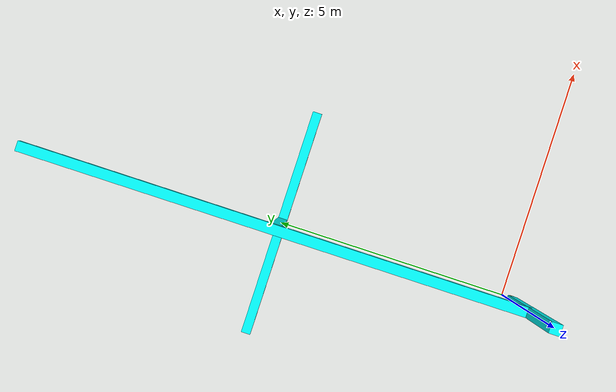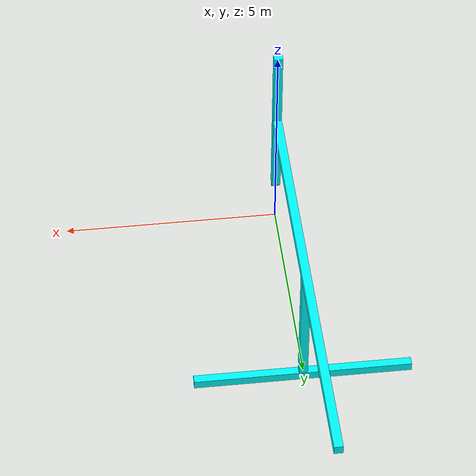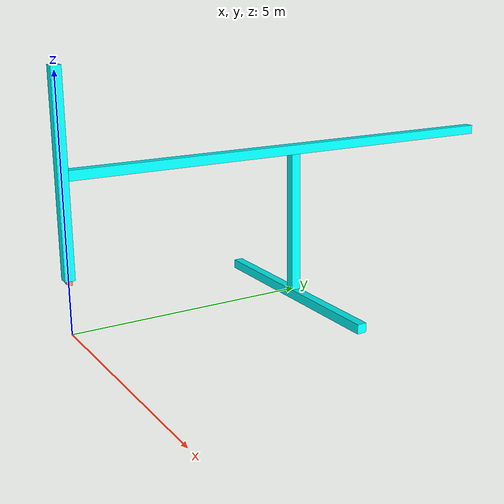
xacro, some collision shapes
<?xml version="1.0"?>
<robot name="drone" xmlns:xacro="http://www.ros.org/wiki/xacro">

  <!--Other files to be included-->
  <xacro:include filename="$(find gazebo_example)/urdf/drone.gazebo.xacro" />

  <!--Some xacros-->
  <xacro:property name="prefix" value="/drone/" />

  <!--fixed frame odom, also used in fwx-->
  <link name="world"/>

  <joint name="${prefix}world_to_link1" type="fixed">
    <parent link="world"/>
    <child link="${prefix}link1"/>
    <origin xyz="0 5 -0.1"/>
  </joint>

  <!--link1-->
  <link name="${prefix}link1">
    <inertial>
      <origin xyz="0 0 0" rpy="0 0 0"/>
      <mass value="1"/>
      <inertia ixx="1"  ixy="0"  ixz="0" iyy="1" iyz="0" izz="1" />
    </inertial>

    <visual>
      <origin xyz="0 0 0" rpy="0 0 0" />
      <geometry>
        <box size="5 0.2 0.2" />
      </geometry>
      <material name="Cyan">
        <color rgba="0 1.0 1.0 1.0"/>
      </material>
    </visual>
  </link>

  <joint name="${prefix}link1_to_link2" type="prismatic">
    <parent link="${prefix}link1"/>
    <child link="${prefix}link2"/>
    <origin xyz="0 0 1.6"/>
    <axis xyz="1 0 0"/>
    <limit effort="1000.0" lower="-2.5" upper="2.5" velocity="0.1"/>
  </joint>

  <!--link2-->
  <link name="${prefix}link2">
    <inertial>
      <origin xyz="0 0 0" rpy="0 0 0"/>
      <mass value="1"/>
      <inertia ixx="1"  ixy="0"  ixz="0" iyy="1" iyz="0" izz="1" />
    </inertial>

    <visual>
      <origin xyz="0 0 0" rpy="0 0 0" />
      <geometry>
        <box size="0.2 0.2 3" />
      </geometry>
      <material name="Cyan">
        <color rgba="0 1.0 1.0 1.0"/>
      </material>
    </visual>
  </link>

  <joint name="${prefix}link2_to_link3" type="prismatic">
    <parent link="${prefix}link2"/>
    <child link="${prefix}link3"/>
    <origin xyz="0 0 1.6"/>
    <axis xyz="0 1 0"/>
    <limit effort="1000.0" lower="-5" upper="5" velocity="0.1"/>
  </joint>

  <!--link3-->
  <link name="${prefix}link3">
    <inertial>
      <origin xyz="0 0 0" rpy="0 0 0"/>
      <mass value="1"/>
      <inertia ixx="1"  ixy="0"  ixz="0" iyy="1" iyz="0" izz="1" />
    </inertial>

    <visual>
      <origin xyz="0 0 0" rpy="0 0 0" />
      <geometry>
        <box size="0.2 10 0.2" />
      </geometry>
      <material name="Cyan">
        <color rgba="0 1.0 1.0 1.0"/>
      </material>
    </visual>
  </link>

  <joint name="${prefix}link3_to_link4" type="prismatic">
    <parent link="${prefix}link3"/>
    <child link="${prefix}link4"/>
    <origin xyz="0 -5 0"/>
    <axis xyz="0 0 1"/>
    <limit effort="1000.0" lower="-2" upper="2" velocity="0.1"/>
  </joint>

  <!--link4-->
  <link name="${prefix}link4">
    <inertial>
      <origin xyz="0 0 0" rpy="0 0 0"/>
      <mass value="1"/>
      <inertia ixx="1"  ixy="0"  ixz="0" iyy="1" iyz="0" izz="1" />
    </inertial>

    <visual>
      <origin xyz="0 0 0" rpy="0 0 0" />
      <geometry>
        <box size="0.2 0.2 4" />
      </geometry>
      <material name="Cyan">
        <color rgba="0 1.0 1.0 1.0"/>
      </material>
    </visual>
  </link>

  <joint name="${prefix}link4_to_drone" type="continuous">
    <parent link="${prefix}link4"/>
    <child link="${prefix}itself"/>
    <origin xyz="0 0 -2.04"/>
    <axis xyz="0 0 1"/>
  </joint>

  <!--drone itself-->
  <link name="${prefix}itself">
    <inertial>
      <origin xyz="0 0 0" rpy="0 0 0"/>
      <mass value="1"/>
      <inertia ixx="1"  ixy="0"  ixz="0" iyy="1" iyz="0" izz="1" />
    </inertial>

    <visual>
      <origin xyz="0 0 0" rpy="0 0 0" />
      <geometry>
        <mesh filename="package://gazebo_example/meshes/drone.STL" />
      </geometry>
    </visual>

    <collision>
      <origin xyz="0 0 0" rpy="0 0 0" />
      <geometry>
        <box size="0.2 0.08 0.08" />
      </geometry>
    </collision>>

  </link>

  <xacro:drone_gazebo prefix="${prefix}"
    hw_interface="hardware_interface/PositionJointInterface"
  />

</robot>

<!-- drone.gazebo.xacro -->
<robot xmlns:xacro="http://wiki.ros.org/xacro">

  <xacro:macro name="drone_gazebo" params="prefix hw_interface">

    <!--transmission-->
    <transmission name="${prefix}link1_to_link2_trans">
      <type>transmission_interface/SimpleTransmission</type>
      <joint name="${prefix}link1_to_link2">
        <hardwareInterface>${hw_interface}</hardwareInterface>
      </joint>
      <actuator name="${prefix}link1_to_link2_motor">
        <mechanicalReduction>1</mechanicalReduction>
      </actuator>
    </transmission>

    <transmission name="${prefix}link2_to_link3_trans">
      <type>transmission_interface/SimpleTransmission</type>
      <joint name="${prefix}link2_to_link3">
        <hardwareInterface>${hw_interface}</hardwareInterface>
      </joint>
      <actuator name="${prefix}link2_to_link3_motor">
        <mechanicalReduction>1</mechanicalReduction>
      </actuator>
    </transmission>

    <transmission name="${prefix}link3_to_link4_trans">
      <type>transmission_interface/SimpleTransmission</type>
      <joint name="${prefix}link3_to_link4">
        <hardwareInterface>${hw_interface}</hardwareInterface>
      </joint>
      <actuator name="${prefix}link3_to_link4_motor">
        <mechanicalReduction>1</mechanicalReduction>
      </actuator>
    </transmission>

    <transmission name="${prefix}link4_to_drone_trans">
      <type>transmission_interface/SimpleTransmission</type>
      <joint name="${prefix}link4_to_drone">
        <hardwareInterface>${hw_interface}</hardwareInterface>
      </joint>
      <actuator name="${prefix}link4_to_drone_motor">
        <mechanicalReduction>1</mechanicalReduction>
      </actuator>
    </transmission>

    <!--Link color-->
    <gazebo reference="${prefix}itself">
      <material>Gazebo/Orange</material>
    </gazebo>

    <!-- ros_control plugin -->
    <gazebo>
      <plugin name="gazebo_ros_control" filename="libgazebo_ros_control.so">
        <robotNamespace>/drone</robotNamespace>
        <robotSimType>gazebo_ros_control/DefaultRobotHWSim</robotSimType>
      </plugin>
    </gazebo>

  </xacro:macro>

  <!--color definition-->
  <material name="orange">
    <color rgba="${255/255} ${108/255} ${10/255} 1.0"/>
  </material>

</robot>
